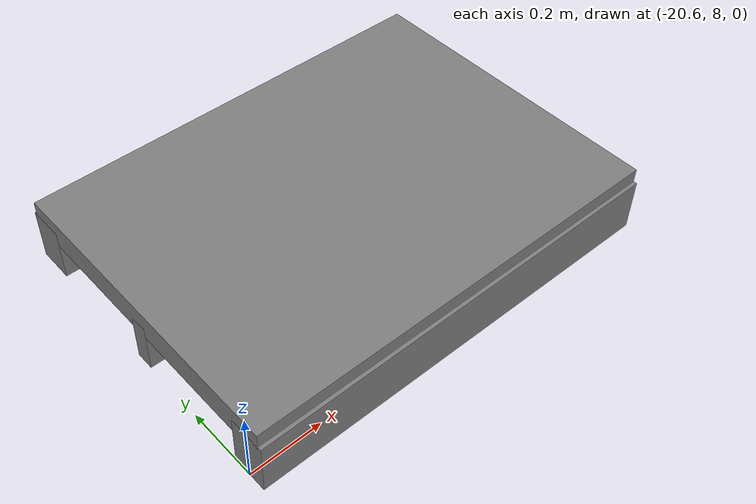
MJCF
<mujoco model="palet">

	<default>
		<default class="palet">
			<default class="palet_side_geom">
				<geom type="box" friction="2 0.005 0.0001" contype="1" conaffinity="0" size="0.60 0.050 0.075" mass="0.1"/>
			</default>
			<default class="palet_middle_geom">
				<geom type="box" friction="2 0.005 0.0001" contype="1" conaffinity="0" size="0.60 0.025 0.075" mass="0.1"/>
			</default>
			<default class="palet_top_geom">
				<geom type="box" friction="2 0.005 0.0001" contype="1" conaffinity="0" size="0.60 0.440 0.040" mass="0.1"/>
			</default>
		</default>
	</default>

	<worldbody>
		<body name="palet_body" pos="-20 8.4 0.075" euler="0 0 0">
			<site name="palet_link1" pos="0 0 0" size="0.001 0.001 0.001"/>
			<joint type="free" />
			<geom pos="0 0.400 0" class="palet_side_geom" contype="1" conaffinity="1"/>
			<geom pos="0 0 0" class="palet_middle_geom" contype="1" conaffinity="1"/>
			<geom pos="0 -0.400 0" class="palet_side_geom" contype="1" conaffinity="1"/>
			<geom pos="0 0 0.075" class="palet_top_geom" contype="1" conaffinity="1"/>
		</body>
	</worldbody>

</mujoco>
